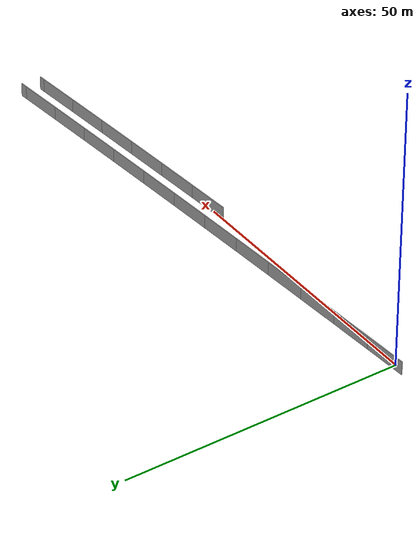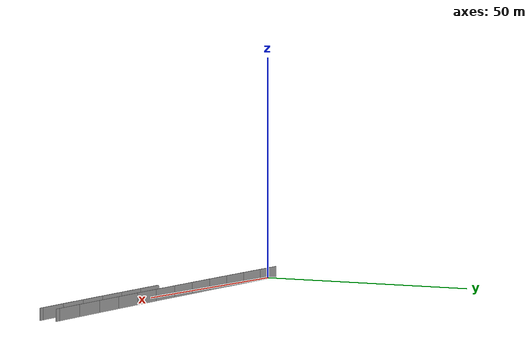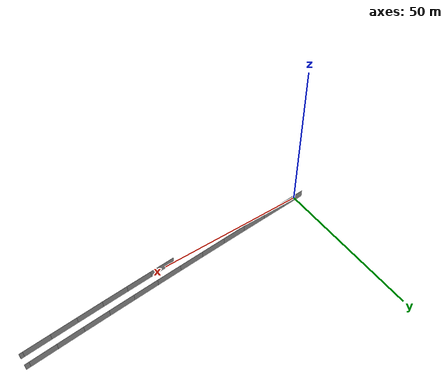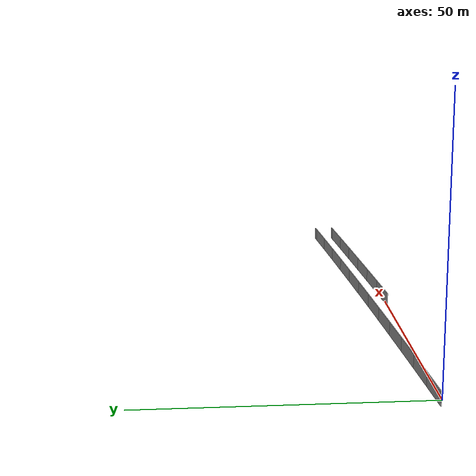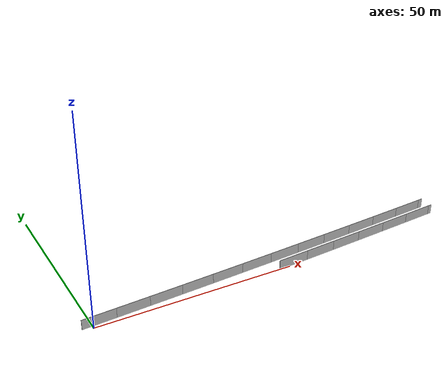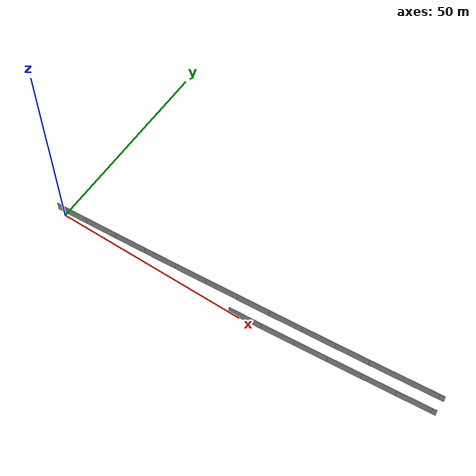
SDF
<?xml version="1.0" ?>
<sdf version="1.6">
  <model name="sps_2401">
    <pose frame="">0 0 0 0 -0 0</pose>
    <static>1</static>
    <self_collide>0</self_collide>
    <allow_auto_disable>0</allow_auto_disable>
    <link name="Wall8990">
      <kinematic>0</kinematic>
      <gravity>1</gravity>
      <self_collide>0</self_collide>
      <collision name="collision">
        <geometry>
          <box>
            <size>8.25136 0.15 2.5</size>
          </box>
        </geometry>
        <pose frame="">0 0 0 0 -0 0</pose>
      </collision>
      <visual name="visual">
        <geometry>
          <box>
            <size>8.25136 0.15 2.5</size>
          </box>
        </geometry>
        <pose frame="">0 0 0 0 -0 0</pose>
        <cast_shadows>1</cast_shadows>
        <transparency>0.0</transparency>
      </visual>
      <pose frame="">1.66314 0.943007 1.25 0 -0 0.055654</pose>
    </link>
    <link name="Wall8991">
      <kinematic>0</kinematic>
      <gravity>1</gravity>
      <self_collide>0</self_collide>
      <collision name="collision">
        <geometry>
          <box>
            <size>8.25192 0.15 2.5</size>
          </box>
        </geometry>
        <pose frame="">0 0 0 0 -0 0</pose>
      </collision>
      <visual name="visual">
        <geometry>
          <box>
            <size>8.25192 0.15 2.5</size>
          </box>
        </geometry>
        <pose frame="">0 0 0 0 -0 0</pose>
        <cast_shadows>1</cast_shadows>
        <transparency>0.0</transparency>
      </visual>
      <pose frame="">9.90145 1.4117 1.25 0 -0 0.0580062</pose>
    </link>
    <link name="Wall8992">
      <kinematic>0</kinematic>
      <gravity>1</gravity>
      <self_collide>0</self_collide>
      <collision name="collision">
        <geometry>
          <box>
            <size>8.25186 0.15 2.5</size>
          </box>
        </geometry>
        <pose frame="">0 0 0 0 -0 0</pose>
      </collision>
      <visual name="visual">
        <geometry>
          <box>
            <size>8.25186 0.15 2.5</size>
          </box>
        </geometry>
        <pose frame="">0 0 0 0 -0 0</pose>
        <cast_shadows>1</cast_shadows>
        <transparency>0.0</transparency>
      </visual>
      <pose frame="">18.1389 1.89989 1.25 0 -0 0.060385</pose>
    </link>
    <link name="Wall8993">
      <kinematic>0</kinematic>
      <gravity>1</gravity>
      <self_collide>0</self_collide>
      <collision name="collision">
        <geometry>
          <box>
            <size>8.25159 0.15 2.5</size>
          </box>
        </geometry>
        <pose frame="">0 0 0 0 -0 0</pose>
      </collision>
      <visual name="visual">
        <geometry>
          <box>
            <size>8.25159 0.15 2.5</size>
          </box>
        </geometry>
        <pose frame="">0 0 0 0 -0 0</pose>
        <cast_shadows>1</cast_shadows>
        <transparency>0.0</transparency>
      </visual>
      <pose frame="">26.375 2.40758 1.25 0 -0 0.0627436</pose>
    </link>
    <link name="Wall8994">
      <kinematic>0</kinematic>
      <gravity>1</gravity>
      <self_collide>0</self_collide>
      <collision name="collision">
        <geometry>
          <box>
            <size>8.25193 0.15 2.5</size>
          </box>
        </geometry>
        <pose frame="">0 0 0 0 -0 0</pose>
      </collision>
      <visual name="visual">
        <geometry>
          <box>
            <size>8.25193 0.15 2.5</size>
          </box>
        </geometry>
        <pose frame="">0 0 0 0 -0 0</pose>
        <cast_shadows>1</cast_shadows>
        <transparency>0.0</transparency>
      </visual>
      <pose frame="">34.6099 2.9348 1.25 0 -0 0.0651276</pose>
    </link>
    <link name="Wall8995">
      <kinematic>0</kinematic>
      <gravity>1</gravity>
      <self_collide>0</self_collide>
      <collision name="collision">
        <geometry>
          <box>
            <size>8.25175 0.15 2.5</size>
          </box>
        </geometry>
        <pose frame="">0 0 0 0 -0 0</pose>
      </collision>
      <visual name="visual">
        <geometry>
          <box>
            <size>8.25175 0.15 2.5</size>
          </box>
        </geometry>
        <pose frame="">0 0 0 0 -0 0</pose>
        <cast_shadows>1</cast_shadows>
        <transparency>0.0</transparency>
      </visual>
      <pose frame="">42.8436 3.48152 1.25 0 -0 0.0674789</pose>
    </link>
    <link name="Wall8996">
      <kinematic>0</kinematic>
      <gravity>1</gravity>
      <self_collide>0</self_collide>
      <collision name="collision">
        <geometry>
          <box>
            <size>8.25148 0.15 2.5</size>
          </box>
        </geometry>
        <pose frame="">0 0 0 0 -0 0</pose>
      </collision>
      <visual name="visual">
        <geometry>
          <box>
            <size>8.25148 0.15 2.5</size>
          </box>
        </geometry>
        <pose frame="">0 0 0 0 -0 0</pose>
        <cast_shadows>1</cast_shadows>
        <transparency>0.0</transparency>
      </visual>
      <pose frame="">51.0757 4.0475 1.25 0 -0 0.0698092</pose>
    </link>
    <link name="Wall8997">
      <kinematic>0</kinematic>
      <gravity>1</gravity>
      <self_collide>0</self_collide>
      <collision name="collision">
        <geometry>
          <box>
            <size>8.2519 0.15 2.5</size>
          </box>
        </geometry>
        <pose frame="">0 0 0 0 -0 0</pose>
      </collision>
      <visual name="visual">
        <geometry>
          <box>
            <size>8.2519 0.15 2.5</size>
          </box>
        </geometry>
        <pose frame="">0 0 0 0 -0 0</pose>
        <cast_shadows>1</cast_shadows>
        <transparency>0.0</transparency>
      </visual>
      <pose frame="">59.3066 4.63289 1.25 0 -0 0.0721933</pose>
    </link>
    <link name="Wall8998">
      <kinematic>0</kinematic>
      <gravity>1</gravity>
      <self_collide>0</self_collide>
      <collision name="collision">
        <geometry>
          <box>
            <size>8.25174 0.15 2.5</size>
          </box>
        </geometry>
        <pose frame="">0 0 0 0 -0 0</pose>
      </collision>
      <visual name="visual">
        <geometry>
          <box>
            <size>8.25174 0.15 2.5</size>
          </box>
        </geometry>
        <pose frame="">0 0 0 0 -0 0</pose>
        <cast_shadows>1</cast_shadows>
        <transparency>0.0</transparency>
      </visual>
      <pose frame="">67.5362 5.23781 1.25 0 -0 0.0745532</pose>
    </link>
    <link name="Wall8999">
      <kinematic>0</kinematic>
      <gravity>1</gravity>
      <self_collide>0</self_collide>
      <collision name="collision">
        <geometry>
          <box>
            <size>8.25182 0.15 2.5</size>
          </box>
        </geometry>
        <pose frame="">0 0 0 0 -0 0</pose>
      </collision>
      <visual name="visual">
        <geometry>
          <box>
            <size>8.25182 0.15 2.5</size>
          </box>
        </geometry>
        <pose frame="">0 0 0 0 -0 0</pose>
        <cast_shadows>1</cast_shadows>
        <transparency>0.0</transparency>
      </visual>
      <pose frame="">75.7644 5.8622 1.25 0 -0 0.0769262</pose>
    </link>
    <link name="Wall9000">
      <kinematic>0</kinematic>
      <gravity>1</gravity>
      <self_collide>0</self_collide>
      <collision name="collision">
        <geometry>
          <box>
            <size>8.25188 0.15 2.5</size>
          </box>
        </geometry>
        <pose frame="">0 0 0 0 -0 0</pose>
      </collision>
      <visual name="visual">
        <geometry>
          <box>
            <size>8.25188 0.15 2.5</size>
          </box>
        </geometry>
        <pose frame="">0 0 0 0 -0 0</pose>
        <cast_shadows>1</cast_shadows>
        <transparency>0.0</transparency>
      </visual>
      <pose frame="">83.9911 6.50609 1.25 0 -0 0.0792923</pose>
    </link>
    <link name="Wall9001">
      <kinematic>0</kinematic>
      <gravity>1</gravity>
      <self_collide>0</self_collide>
      <collision name="collision">
        <geometry>
          <box>
            <size>8.25175 0.15 2.5</size>
          </box>
        </geometry>
        <pose frame="">0 0 0 0 -0 0</pose>
      </collision>
      <visual name="visual">
        <geometry>
          <box>
            <size>8.25175 0.15 2.5</size>
          </box>
        </geometry>
        <pose frame="">0 0 0 0 -0 0</pose>
        <cast_shadows>1</cast_shadows>
        <transparency>0.0</transparency>
      </visual>
      <pose frame="">92.2161 7.16951 1.25 0 -0 0.0816756</pose>
    </link>
    <link name="Wall9002">
      <kinematic>0</kinematic>
      <gravity>1</gravity>
      <self_collide>0</self_collide>
      <collision name="collision">
        <geometry>
          <box>
            <size>1.34815 0.15 2.5</size>
          </box>
        </geometry>
        <pose frame="">0 0 0 0 -0 0</pose>
      </collision>
      <visual name="visual">
        <geometry>
          <box>
            <size>1.34815 0.15 2.5</size>
          </box>
        </geometry>
        <pose frame="">0 0 0 0 -0 0</pose>
        <cast_shadows>1</cast_shadows>
        <transparency>0.0</transparency>
      </visual>
      <pose frame="">97 7.56268 1.25 0 -0 0.0840049</pose>
    </link>
    <link name="Wall9087">
      <kinematic>0</kinematic>
      <gravity>1</gravity>
      <self_collide>0</self_collide>
      <collision name="collision">
        <geometry>
          <box>
            <size>8.26171 0.15 2.5</size>
          </box>
        </geometry>
        <pose frame="">0 0 0 0 -0 0</pose>
      </collision>
      <visual name="visual">
        <geometry>
          <box>
            <size>8.26171 0.15 2.5</size>
          </box>
        </geometry>
        <pose frame="">0 0 0 0 -0 0</pose>
        <cast_shadows>1</cast_shadows>
        <transparency>0.0</transparency>
      </visual>
      <pose frame="">51.2888 0.296492 1.25 0 -0 0.0698189</pose>
    </link>
    <link name="Wall9088">
      <kinematic>0</kinematic>
      <gravity>1</gravity>
      <self_collide>0</self_collide>
      <collision name="collision">
        <geometry>
          <box>
            <size>8.26176 0.15 2.5</size>
          </box>
        </geometry>
        <pose frame="">0 0 0 0 -0 0</pose>
      </collision>
      <visual name="visual">
        <geometry>
          <box>
            <size>8.26176 0.15 2.5</size>
          </box>
        </geometry>
        <pose frame="">0 0 0 0 -0 0</pose>
        <cast_shadows>1</cast_shadows>
        <transparency>0.0</transparency>
      </visual>
      <pose frame="">59.5297 0.882674 1.25 0 -0 0.0722033</pose>
    </link>
    <link name="Wall9089">
      <kinematic>0</kinematic>
      <gravity>1</gravity>
      <self_collide>0</self_collide>
      <collision name="collision">
        <geometry>
          <box>
            <size>8.26171 0.15 2.5</size>
          </box>
        </geometry>
        <pose frame="">0 0 0 0 -0 0</pose>
      </collision>
      <visual name="visual">
        <geometry>
          <box>
            <size>8.26171 0.15 2.5</size>
          </box>
        </geometry>
        <pose frame="">0 0 0 0 -0 0</pose>
        <cast_shadows>1</cast_shadows>
        <transparency>0.0</transparency>
      </visual>
      <pose frame="">67.7692 1.4883 1.25 0 -0 0.0745372</pose>
    </link>
    <link name="Wall9090">
      <kinematic>0</kinematic>
      <gravity>1</gravity>
      <self_collide>0</self_collide>
      <collision name="collision">
        <geometry>
          <box>
            <size>8.26185 0.15 2.5</size>
          </box>
        </geometry>
        <pose frame="">0 0 0 0 -0 0</pose>
      </collision>
      <visual name="visual">
        <geometry>
          <box>
            <size>8.26185 0.15 2.5</size>
          </box>
        </geometry>
        <pose frame="">0 0 0 0 -0 0</pose>
        <cast_shadows>1</cast_shadows>
        <transparency>0.0</transparency>
      </visual>
      <pose frame="">76.0073 2.1133 1.25 0 -0 0.0769067</pose>
    </link>
    <link name="Wall9091">
      <kinematic>0</kinematic>
      <gravity>1</gravity>
      <self_collide>0</self_collide>
      <collision name="collision">
        <geometry>
          <box>
            <size>8.26174 0.15 2.5</size>
          </box>
        </geometry>
        <pose frame="">0 0 0 0 -0 0</pose>
      </collision>
      <visual name="visual">
        <geometry>
          <box>
            <size>8.26174 0.15 2.5</size>
          </box>
        </geometry>
        <pose frame="">0 0 0 0 -0 0</pose>
        <cast_shadows>1</cast_shadows>
        <transparency>0.0</transparency>
      </visual>
      <pose frame="">84.2439 2.75789 1.25 0 -0 0.0792939</pose>
    </link>
    <link name="Wall9092">
      <kinematic>0</kinematic>
      <gravity>1</gravity>
      <self_collide>0</self_collide>
      <collision name="collision">
        <geometry>
          <box>
            <size>8.26171 0.15 2.5</size>
          </box>
        </geometry>
        <pose frame="">0 0 0 0 -0 0</pose>
      </collision>
      <visual name="visual">
        <geometry>
          <box>
            <size>8.26171 0.15 2.5</size>
          </box>
        </geometry>
        <pose frame="">0 0 0 0 -0 0</pose>
        <cast_shadows>1</cast_shadows>
        <transparency>0.0</transparency>
      </visual>
      <pose frame="">92.4789 3.42198 1.25 0 -0 0.0816436</pose>
    </link>
    <link name="Wall9093">
      <kinematic>0</kinematic>
      <gravity>1</gravity>
      <self_collide>0</self_collide>
      <collision name="collision">
        <geometry>
          <box>
            <size>1.07944 0.15 2.5</size>
          </box>
        </geometry>
        <pose frame="">0 0 0 0 -0 0</pose>
      </collision>
      <visual name="visual">
        <geometry>
          <box>
            <size>1.07944 0.15 2.5</size>
          </box>
        </geometry>
        <pose frame="">0 0 0 0 -0 0</pose>
        <cast_shadows>1</cast_shadows>
        <transparency>0.0</transparency>
      </visual>
      <pose frame="">97.1338 3.80415 1.25 0 -0 0.0840081</pose>
    </link>
  </model>
</sdf>
